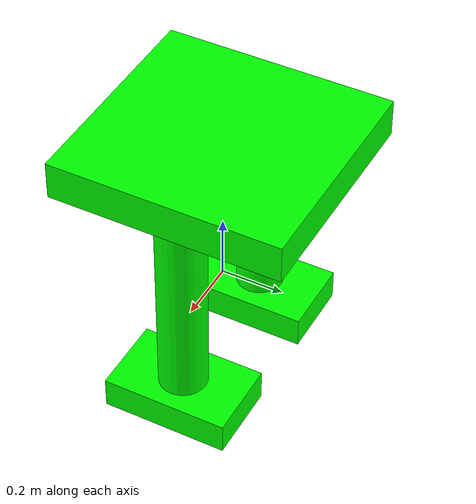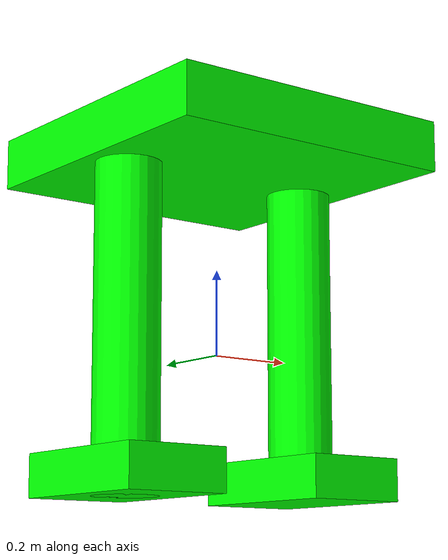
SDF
<?xml version='1.0'?>
<sdf version='1.6'>
  <model name='HumanoidRobot'>
    <link name='link_0'>
      <pose frame=''>-0.25 -0 -0.281994 0 -0 0</pose>
      <inertial>
        <mass>0.0142113</mass>
        <inertia>
          <ixx>0.0001484</ixx>
          <ixy>0</ixy>
          <ixz>0</ixz>
          <iyy>0.00040332</iyy>
          <iyz>0</iyz>
          <izz>0.00053987</izz>
        </inertia>
        <pose frame=''>0 0 0 0 -0 0</pose>
      </inertial>
      <self_collide>0</self_collide>
      <kinematic>0</kinematic>
      <gravity>1</gravity>
      <visual name='visual'>
        <pose frame=''>0 0 0 0 -0 0</pose>
        <geometry>
          <box>
            <size>0.25 0.4 0.1</size>
          </box>
        </geometry>
        <material>
          <lighting>1</lighting>
          <script>
            <uri>file://media/materials/scripts/gazebo.material</uri>
            <name>Gazebo/Grey</name>
          </script>
          <shader type='pixel'>
            <normal_map>__default__</normal_map>
          </shader>
          <ambient>0 1 0 1</ambient>
          <diffuse>0 1 0 1</diffuse>
          <specular>0.01 0.01 0.01 1</specular>
          <emissive>0 0 0 1</emissive>
        </material>
        <transparency>0</transparency>
        <cast_shadows>1</cast_shadows>
      </visual>
      <collision name='collision'>
        <laser_retro>0</laser_retro>
        <max_contacts>10</max_contacts>
        <pose frame=''>0 0 0 0 -0 0</pose>
        <geometry>
          <box>
            <size>0.25 0.4 0.1</size>
          </box>
        </geometry>
        <surface>
          <friction>
            <ode>
              <mu>1</mu>
              <mu2>1</mu2>
              <fdir1>0 0 0</fdir1>
              <slip1>0</slip1>
              <slip2>0</slip2>
            </ode>
            <torsional>
              <coefficient>1</coefficient>
              <patch_radius>0</patch_radius>
              <surface_radius>0</surface_radius>
              <use_patch_radius>1</use_patch_radius>
              <ode>
                <slip>0</slip>
              </ode>
            </torsional>
          </friction>
          <bounce>
            <restitution_coefficient>0</restitution_coefficient>
            <threshold>1e+06</threshold>
          </bounce>
          <contact>
            <collide_without_contact>0</collide_without_contact>
            <collide_without_contact_bitmask>1</collide_without_contact_bitmask>
            <collide_bitmask>1</collide_bitmask>
            <ode>
              <soft_cfm>0</soft_cfm>
              <soft_erp>0.2</soft_erp>
              <kp>1e+13</kp>
              <kd>1</kd>
              <max_vel>0.01</max_vel>
              <min_depth>0</min_depth>
            </ode>
            <bullet>
              <split_impulse>1</split_impulse>
              <split_impulse_penetration_threshold>-0.01</split_impulse_penetration_threshold>
              <soft_cfm>0</soft_cfm>
              <soft_erp>0.2</soft_erp>
              <kp>1e+13</kp>
              <kd>1</kd>
            </bullet>
          </contact>
        </surface>
      </collision>
    </link>
    <link name='link_0_clone'>
      <pose frame=''>0.25 0 -0.281994 0 -0 0</pose>
      <inertial>
        <mass>0.0142113</mass>
        <inertia>
          <ixx>0.0001484</ixx>
          <ixy>0</ixy>
          <ixz>0</ixz>
          <iyy>0.00040332</iyy>
          <iyz>0</iyz>
          <izz>0.00053987</izz>
        </inertia>
        <pose frame=''>0 0 0 0 -0 0</pose>
      </inertial>
      <self_collide>0</self_collide>
      <kinematic>0</kinematic>
      <gravity>1</gravity>
      <visual name='visual'>
        <pose frame=''>0 0 0 0 -0 0</pose>
        <geometry>
          <box>
            <size>0.25 0.4 0.1</size>
          </box>
        </geometry>
        <material>
          <lighting>1</lighting>
          <script>
            <uri>file://media/materials/scripts/gazebo.material</uri>
            <name>Gazebo/Grey</name>
          </script>
          <shader type='pixel'>
            <normal_map>__default__</normal_map>
          </shader>
          <ambient>0 1 0 1</ambient>
          <diffuse>0 1 0 1</diffuse>
          <specular>0.01 0.01 0.01 1</specular>
          <emissive>0 0 0 1</emissive>
        </material>
        <transparency>0</transparency>
        <cast_shadows>1</cast_shadows>
      </visual>
      <collision name='collision'>
        <laser_retro>0</laser_retro>
        <max_contacts>10</max_contacts>
        <pose frame=''>0 0 0 0 -0 0</pose>
        <geometry>
          <box>
            <size>0.25 0.4 0.1</size>
          </box>
        </geometry>
        <surface>
          <friction>
            <ode>
              <mu>1</mu>
              <mu2>1</mu2>
              <fdir1>0 0 0</fdir1>
              <slip1>0</slip1>
              <slip2>0</slip2>
            </ode>
            <torsional>
              <coefficient>1</coefficient>
              <patch_radius>0</patch_radius>
              <surface_radius>0</surface_radius>
              <use_patch_radius>1</use_patch_radius>
              <ode>
                <slip>0</slip>
              </ode>
            </torsional>
          </friction>
          <bounce>
            <restitution_coefficient>0</restitution_coefficient>
            <threshold>1e+06</threshold>
          </bounce>
          <contact>
            <collide_without_contact>0</collide_without_contact>
            <collide_without_contact_bitmask>1</collide_without_contact_bitmask>
            <collide_bitmask>1</collide_bitmask>
            <ode>
              <soft_cfm>0</soft_cfm>
              <soft_erp>0.2</soft_erp>
              <kp>1e+13</kp>
              <kd>1</kd>
              <max_vel>0.01</max_vel>
              <min_depth>0</min_depth>
            </ode>
            <bullet>
              <split_impulse>1</split_impulse>
              <split_impulse_penetration_threshold>-0.01</split_impulse_penetration_threshold>
              <soft_cfm>0</soft_cfm>
              <soft_erp>0.2</soft_erp>
              <kp>1e+13</kp>
              <kd>1</kd>
            </bullet>
          </contact>
        </surface>
      </collision>
    </link>
    <link name='link_1'>
      <pose frame=''>-0.25 -0 0.043006 0 -0 0</pose>
      <inertial>
        <mass>0.023313</mass>
        <inertia>
          <ixx>0.00197672</ixx>
          <ixy>0</ixy>
          <ixz>0</ixz>
          <iyy>0.00197672</iyy>
          <iyz>0</iyz>
          <izz>6.794e-05</izz>
        </inertia>
        <pose frame=''>0 0 0 0 -0 0</pose>
      </inertial>
      <self_collide>0</self_collide>
      <kinematic>0</kinematic>
      <gravity>1</gravity>
      <visual name='visual'>
        <pose frame=''>0 0 0 0 -0 0</pose>
        <geometry>
          <cylinder>
            <radius>0.076344</radius>
            <length>0.75</length>
          </cylinder>
        </geometry>
        <material>
          <lighting>1</lighting>
          <script>
            <uri>file://media/materials/scripts/gazebo.material</uri>
            <name>Gazebo/Grey</name>
          </script>
          <shader type='pixel'>
            <normal_map>__default__</normal_map>
          </shader>
          <ambient>0 1 0 1</ambient>
          <diffuse>0 1 0 1</diffuse>
          <specular>0.01 0.01 0.01 1</specular>
          <emissive>0 0 0 1</emissive>
        </material>
        <transparency>0</transparency>
        <cast_shadows>1</cast_shadows>
      </visual>
      <collision name='collision'>
        <laser_retro>0</laser_retro>
        <max_contacts>10</max_contacts>
        <pose frame=''>0 0 0 0 -0 0</pose>
        <geometry>
          <cylinder>
            <radius>0.076344</radius>
            <length>0.75</length>
          </cylinder>
        </geometry>
        <surface>
          <friction>
            <ode>
              <mu>1</mu>
              <mu2>1</mu2>
              <fdir1>0 0 0</fdir1>
              <slip1>0</slip1>
              <slip2>0</slip2>
            </ode>
            <torsional>
              <coefficient>1</coefficient>
              <patch_radius>0</patch_radius>
              <surface_radius>0</surface_radius>
              <use_patch_radius>1</use_patch_radius>
              <ode>
                <slip>0</slip>
              </ode>
            </torsional>
          </friction>
          <bounce>
            <restitution_coefficient>0</restitution_coefficient>
            <threshold>1e+06</threshold>
          </bounce>
          <contact>
            <collide_without_contact>0</collide_without_contact>
            <collide_without_contact_bitmask>1</collide_without_contact_bitmask>
            <collide_bitmask>1</collide_bitmask>
            <ode>
              <soft_cfm>0</soft_cfm>
              <soft_erp>0.2</soft_erp>
              <kp>1e+13</kp>
              <kd>1</kd>
              <max_vel>0.01</max_vel>
              <min_depth>0</min_depth>
            </ode>
            <bullet>
              <split_impulse>1</split_impulse>
              <split_impulse_penetration_threshold>-0.01</split_impulse_penetration_threshold>
              <soft_cfm>0</soft_cfm>
              <soft_erp>0.2</soft_erp>
              <kp>1e+13</kp>
              <kd>1</kd>
            </bullet>
          </contact>
        </surface>
      </collision>
    </link>
    <link name='link_1_clone'>
      <pose frame=''>0.25 0 0.043006 0 -0 0</pose>
      <inertial>
        <mass>0.023313</mass>
        <inertia>
          <ixx>0.00197672</ixx>
          <ixy>0</ixy>
          <ixz>0</ixz>
          <iyy>0.00197672</iyy>
          <iyz>0</iyz>
          <izz>6.794e-05</izz>
        </inertia>
        <pose frame=''>0 0 0 0 -0 0</pose>
      </inertial>
      <self_collide>0</self_collide>
      <kinematic>0</kinematic>
      <gravity>1</gravity>
      <visual name='visual'>
        <pose frame=''>0 0 0 0 -0 0</pose>
        <geometry>
          <cylinder>
            <radius>0.076344</radius>
            <length>0.75</length>
          </cylinder>
        </geometry>
        <material>
          <lighting>1</lighting>
          <script>
            <uri>file://media/materials/scripts/gazebo.material</uri>
            <name>Gazebo/Grey</name>
          </script>
          <shader type='pixel'>
            <normal_map>__default__</normal_map>
          </shader>
          <ambient>0 1 0 1</ambient>
          <diffuse>0 1 0 1</diffuse>
          <specular>0.01 0.01 0.01 1</specular>
          <emissive>0 0 0 1</emissive>
        </material>
        <transparency>0</transparency>
        <cast_shadows>1</cast_shadows>
      </visual>
      <collision name='collision'>
        <laser_retro>0</laser_retro>
        <max_contacts>10</max_contacts>
        <pose frame=''>0 0 0 0 -0 0</pose>
        <geometry>
          <cylinder>
            <radius>0.076344</radius>
            <length>0.75</length>
          </cylinder>
        </geometry>
        <surface>
          <friction>
            <ode>
              <mu>1</mu>
              <mu2>1</mu2>
              <fdir1>0 0 0</fdir1>
              <slip1>0</slip1>
              <slip2>0</slip2>
            </ode>
            <torsional>
              <coefficient>1</coefficient>
              <patch_radius>0</patch_radius>
              <surface_radius>0</surface_radius>
              <use_patch_radius>1</use_patch_radius>
              <ode>
                <slip>0</slip>
              </ode>
            </torsional>
          </friction>
          <bounce>
            <restitution_coefficient>0</restitution_coefficient>
            <threshold>1e+06</threshold>
          </bounce>
          <contact>
            <collide_without_contact>0</collide_without_contact>
            <collide_without_contact_bitmask>1</collide_without_contact_bitmask>
            <collide_bitmask>1</collide_bitmask>
            <ode>
              <soft_cfm>0</soft_cfm>
              <soft_erp>0.2</soft_erp>
              <kp>1e+13</kp>
              <kd>1</kd>
              <max_vel>0.01</max_vel>
              <min_depth>0</min_depth>
            </ode>
            <bullet>
              <split_impulse>1</split_impulse>
              <split_impulse_penetration_threshold>-0.01</split_impulse_penetration_threshold>
              <soft_cfm>0</soft_cfm>
              <soft_erp>0.2</soft_erp>
              <kp>1e+13</kp>
              <kd>1</kd>
            </bullet>
          </contact>
        </surface>
      </collision>
    </link>
    <link name='link_2'>
      <pose frame=''>0 -0 0.477976 0 -0 0</pose>
      <inertial>
        <mass>0.0626193</mass>
        <inertia>
          <ixx>0.00289021</ixx>
          <ixy>0</ixy>
          <ixz>0</ixz>
          <iyy>0.00271268</iyy>
          <iyz>0</iyz>
          <izz>0.00545276</izz>
        </inertia>
        <pose frame=''>0 0 0 0 -0 0</pose>
      </inertial>
      <self_collide>0</self_collide>
      <kinematic>0</kinematic>
      <visual name='visual'>
        <pose frame=''>0 0 0 0 -0 0</pose>
        <geometry>
          <box>
            <size>0.710955 0.734492 0.119941</size>
          </box>
        </geometry>
        <material>
          <lighting>1</lighting>
          <script>
            <uri>file://media/materials/scripts/gazebo.material</uri>
            <name>Gazebo/Grey</name>
          </script>
          <shader type='pixel'>
            <normal_map>__default__</normal_map>
          </shader>
          <ambient>0 1 0 1</ambient>
          <diffuse>0 1 0 1</diffuse>
          <specular>0.01 0.01 0.01 1</specular>
          <emissive>0 0 0 1</emissive>
        </material>
        <transparency>0</transparency>
        <cast_shadows>1</cast_shadows>
      </visual>
      <collision name='collision'>
        <laser_retro>0</laser_retro>
        <max_contacts>10</max_contacts>
        <pose frame=''>0 0 0 0 -0 0</pose>
        <geometry>
          <box>
            <size>0.710955 0.734492 0.119941</size>
          </box>
        </geometry>
        <surface>
          <friction>
            <ode>
              <mu>1</mu>
              <mu2>1</mu2>
              <fdir1>0 0 0</fdir1>
              <slip1>0</slip1>
              <slip2>0</slip2>
            </ode>
            <torsional>
              <coefficient>1</coefficient>
              <patch_radius>0</patch_radius>
              <surface_radius>0</surface_radius>
              <use_patch_radius>1</use_patch_radius>
              <ode>
                <slip>0</slip>
              </ode>
            </torsional>
          </friction>
          <bounce>
            <restitution_coefficient>0</restitution_coefficient>
            <threshold>1e+06</threshold>
          </bounce>
          <contact>
            <collide_without_contact>0</collide_without_contact>
            <collide_without_contact_bitmask>1</collide_without_contact_bitmask>
            <collide_bitmask>1</collide_bitmask>
            <ode>
              <soft_cfm>0</soft_cfm>
              <soft_erp>0.2</soft_erp>
              <kp>1e+13</kp>
              <kd>1</kd>
              <max_vel>0.01</max_vel>
              <min_depth>0</min_depth>
            </ode>
            <bullet>
              <split_impulse>1</split_impulse>
              <split_impulse_penetration_threshold>-0.01</split_impulse_penetration_threshold>
              <soft_cfm>0</soft_cfm>
              <soft_erp>0.2</soft_erp>
              <kp>1e+13</kp>
              <kd>1</kd>
            </bullet>
          </contact>
        </surface>
      </collision>
    </link>
    <joint name='link_0_JOINT_1' type='revolute'>
      <parent>link_0</parent>
      <child>link_1</child>
      <pose frame=''>0 0 0 0 -0 0</pose>
      <axis>
        <xyz>1 0 0</xyz>
        <use_parent_model_frame>0</use_parent_model_frame>
        <limit>
          <lower>-1.79769e+308</lower>
          <upper>1.79769e+308</upper>
          <effort>-1</effort>
          <velocity>-1</velocity>
        </limit>
        <dynamics>
          <spring_reference>0</spring_reference>
          <spring_stiffness>0</spring_stiffness>
          <damping>0</damping>
          <friction>0</friction>
        </dynamics>
      </axis>
      <physics>
        <ode>
          <limit>
            <cfm>0</cfm>
            <erp>0.2</erp>
          </limit>
          <suspension>
            <cfm>0</cfm>
            <erp>0.2</erp>
          </suspension>
        </ode>
      </physics>
    </joint>
    <joint name='link_1_JOINT_4' type='revolute'>
      <parent>link_1</parent>
      <child>link_2</child>
      <pose frame=''>0 0 0 0 -0 0</pose>
      <axis>
        <xyz>1 0 0</xyz>
        <use_parent_model_frame>0</use_parent_model_frame>
        <limit>
          <lower>-1.79769e+308</lower>
          <upper>1.79769e+308</upper>
          <effort>-1</effort>
          <velocity>-1</velocity>
        </limit>
        <dynamics>
          <spring_reference>0</spring_reference>
          <spring_stiffness>0</spring_stiffness>
          <damping>0</damping>
          <friction>0</friction>
        </dynamics>
      </axis>
      <physics>
        <ode>
          <limit>
            <cfm>0</cfm>
            <erp>0.2</erp>
          </limit>
          <suspension>
            <cfm>0</cfm>
            <erp>0.2</erp>
          </suspension>
        </ode>
      </physics>
    </joint>
    <joint name='link_1_clone_JOINT_2' type='revolute'>
      <parent>link_1_clone</parent>
      <child>link_0_clone</child>
      <pose frame=''>0 0 0 0 -0 0</pose>
      <axis>
        <xyz>1 0 0</xyz>
        <use_parent_model_frame>0</use_parent_model_frame>
        <limit>
          <lower>-1.79769e+308</lower>
          <upper>1.79769e+308</upper>
          <effort>-1</effort>
          <velocity>-1</velocity>
        </limit>
        <dynamics>
          <spring_reference>0</spring_reference>
          <spring_stiffness>0</spring_stiffness>
          <damping>0</damping>
          <friction>0</friction>
        </dynamics>
      </axis>
      <physics>
        <ode>
          <limit>
            <cfm>0</cfm>
            <erp>0.2</erp>
          </limit>
          <suspension>
            <cfm>0</cfm>
            <erp>0.2</erp>
          </suspension>
        </ode>
      </physics>
    </joint>
    <joint name='link_1_clone_JOINT_3' type='revolute'>
      <parent>link_1_clone</parent>
      <child>link_2</child>
      <pose frame=''>0 0 0 0 -0 0</pose>
      <axis>
        <xyz>1 0 0</xyz>
        <use_parent_model_frame>0</use_parent_model_frame>
        <limit>
          <lower>-1.79769e+308</lower>
          <upper>1.79769e+308</upper>
          <effort>-1</effort>
          <velocity>-1</velocity>
        </limit>
        <dynamics>
          <spring_reference>0</spring_reference>
          <spring_stiffness>0</spring_stiffness>
          <damping>0</damping>
          <friction>0</friction>
        </dynamics>
      </axis>
      <physics>
        <ode>
          <limit>
            <cfm>0</cfm>
            <erp>0.2</erp>
          </limit>
          <suspension>
            <cfm>0</cfm>
            <erp>0.2</erp>
          </suspension>
        </ode>
      </physics>
    </joint>
    <static>0</static>
    <allow_auto_disable>1</allow_auto_disable>
  </model>
</sdf>
